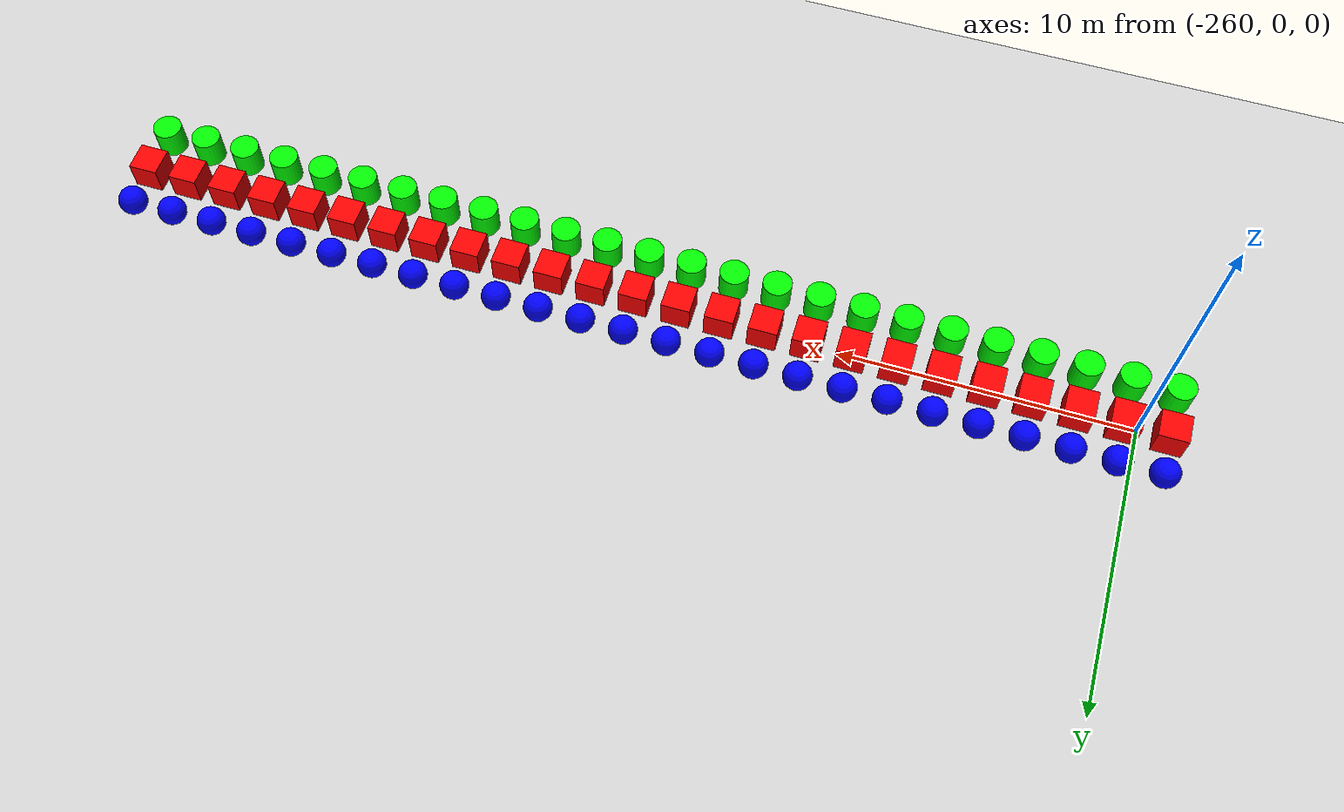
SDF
<sdf version="1.6">
 <world name="shapes">
  <model name="ground_plane">
   <static>true</static>
   <link name="link">
    <collision name="collision">
     <geometry><plane><normal>0 0 1</normal><size>100 100</size></plane></geometry>
    </collision>
    <visual name="visual">
     <geometry><plane><normal>0 0 1</normal><size>100 100</size></plane></geometry>
     <material>
      <ambient>0.8 0.8 0.8 1</ambient>
      <diffuse>0.8 0.8 0.8 1</diffuse>
      <specular>0.8 0.8 0.8 1</specular>
     </material>
    </visual>
   </link>
  </model>
  <model name="box_326">
   <static>false</static>
   <pose>-261.0 0 0.5 0 0 0</pose>
   <link name="box_link">
    <inertial>
     <inertia><ixx>1</ixx><ixy>0</ixy><ixz>0</ixz><iyy>1</iyy><iyz>0</iyz><izz>1</izz></inertia>
     <mass>1.0</mass>
    </inertial>
    <collision name="box_collision"><geometry><box><size>1 1 1</size></box></geometry></collision>
    <visual name="box_visual">
     <geometry><box><size>1 1 1</size></box></geometry>
     <material><ambient>1 0 0 1</ambient><diffuse>1 0 0 1</diffuse><specular>1 0 0 1</specular></material>
    </visual>
   </link>
  </model>
  <model name="cylinder_326">
   <static>false</static>
   <pose>-261.0 -1.5 0.5 0 0 0</pose>
   <link name="cylinder_link">
    <inertial>
     <inertia><ixx>2</ixx><ixy>0</ixy><ixz>0</ixz><iyy>2</iyy><iyz>0</iyz><izz>2</izz></inertia>
     <mass>2.0</mass>
    </inertial>
    <collision name="cylinder_collision">
     <geometry><cylinder><radius>0.5</radius><length>1.0</length></cylinder></geometry>
    </collision>
    <visual name="cylinder_visual">
     <geometry><cylinder><radius>0.5</radius><length>1.0</length></cylinder></geometry>
     <material><ambient>0 1 0 1</ambient><diffuse>0 1 0 1</diffuse><specular>0 1 0 1</specular></material>
    </visual>
   </link>
  </model>
  <model name="sphere_326">
   <static>false</static>
   <pose>-261.0 1.5 0.5 0 0 0</pose>
   <link name="sphere_link">
    <inertial>
     <inertia><ixx>3</ixx><ixy>0</ixy><ixz>0</ixz><iyy>3</iyy><iyz>0</iyz><izz>3</izz></inertia>
     <mass>3.0</mass>
    </inertial>
    <collision name="sphere_collision"><geometry><sphere><radius>0.5</radius></sphere></geometry></collision>
    <visual name="sphere_visual">
     <geometry><sphere><radius>0.5</radius></sphere></geometry>
     <material><ambient>0 0 1 1</ambient><diffuse>0 0 1 1</diffuse><specular>0 0 1 1</specular></material>
    </visual>
   </link>
  </model>
  <model name="box_327">
   <static>false</static>
   <pose>-259.5 0 0.5 0 0 0</pose>
   <link name="box_link">
    <inertial>
     <inertia><ixx>1</ixx><ixy>0</ixy><ixz>0</ixz><iyy>1</iyy><iyz>0</iyz><izz>1</izz></inertia>
     <mass>1.0</mass>
    </inertial>
    <collision name="box_collision"><geometry><box><size>1 1 1</size></box></geometry></collision>
    <visual name="box_visual">
     <geometry><box><size>1 1 1</size></box></geometry>
     <material><ambient>1 0 0 1</ambient><diffuse>1 0 0 1</diffuse><specular>1 0 0 1</specular></material>
    </visual>
   </link>
  </model>
  <model name="cylinder_327">
   <static>false</static>
   <pose>-259.5 -1.5 0.5 0 0 0</pose>
   <link name="cylinder_link">
    <inertial>
     <inertia><ixx>2</ixx><ixy>0</ixy><ixz>0</ixz><iyy>2</iyy><iyz>0</iyz><izz>2</izz></inertia>
     <mass>2.0</mass>
    </inertial>
    <collision name="cylinder_collision">
     <geometry><cylinder><radius>0.5</radius><length>1.0</length></cylinder></geometry>
    </collision>
    <visual name="cylinder_visual">
     <geometry><cylinder><radius>0.5</radius><length>1.0</length></cylinder></geometry>
     <material><ambient>0 1 0 1</ambient><diffuse>0 1 0 1</diffuse><specular>0 1 0 1</specular></material>
    </visual>
   </link>
  </model>
  <model name="sphere_327">
   <static>false</static>
   <pose>-259.5 1.5 0.5 0 0 0</pose>
   <link name="sphere_link">
    <inertial>
     <inertia><ixx>3</ixx><ixy>0</ixy><ixz>0</ixz><iyy>3</iyy><iyz>0</iyz><izz>3</izz></inertia>
     <mass>3.0</mass>
    </inertial>
    <collision name="sphere_collision"><geometry><sphere><radius>0.5</radius></sphere></geometry></collision>
    <visual name="sphere_visual">
     <geometry><sphere><radius>0.5</radius></sphere></geometry>
     <material><ambient>0 0 1 1</ambient><diffuse>0 0 1 1</diffuse><specular>0 0 1 1</specular></material>
    </visual>
   </link>
  </model>
  <model name="box_328">
   <static>false</static>
   <pose>-258.0 0 0.5 0 0 0</pose>
   <link name="box_link">
    <inertial>
     <inertia><ixx>1</ixx><ixy>0</ixy><ixz>0</ixz><iyy>1</iyy><iyz>0</iyz><izz>1</izz></inertia>
     <mass>1.0</mass>
    </inertial>
    <collision name="box_collision"><geometry><box><size>1 1 1</size></box></geometry></collision>
    <visual name="box_visual">
     <geometry><box><size>1 1 1</size></box></geometry>
     <material><ambient>1 0 0 1</ambient><diffuse>1 0 0 1</diffuse><specular>1 0 0 1</specular></material>
    </visual>
   </link>
  </model>
  <model name="cylinder_328">
   <static>false</static>
   <pose>-258.0 -1.5 0.5 0 0 0</pose>
   <link name="cylinder_link">
    <inertial>
     <inertia><ixx>2</ixx><ixy>0</ixy><ixz>0</ixz><iyy>2</iyy><iyz>0</iyz><izz>2</izz></inertia>
     <mass>2.0</mass>
    </inertial>
    <collision name="cylinder_collision">
     <geometry><cylinder><radius>0.5</radius><length>1.0</length></cylinder></geometry>
    </collision>
    <visual name="cylinder_visual">
     <geometry><cylinder><radius>0.5</radius><length>1.0</length></cylinder></geometry>
     <material><ambient>0 1 0 1</ambient><diffuse>0 1 0 1</diffuse><specular>0 1 0 1</specular></material>
    </visual>
   </link>
  </model>
  <model name="sphere_328">
   <static>false</static>
   <pose>-258.0 1.5 0.5 0 0 0</pose>
   <link name="sphere_link">
    <inertial>
     <inertia><ixx>3</ixx><ixy>0</ixy><ixz>0</ixz><iyy>3</iyy><iyz>0</iyz><izz>3</izz></inertia>
     <mass>3.0</mass>
    </inertial>
    <collision name="sphere_collision"><geometry><sphere><radius>0.5</radius></sphere></geometry></collision>
    <visual name="sphere_visual">
     <geometry><sphere><radius>0.5</radius></sphere></geometry>
     <material><ambient>0 0 1 1</ambient><diffuse>0 0 1 1</diffuse><specular>0 0 1 1</specular></material>
    </visual>
   </link>
  </model>
  <model name="box_329">
   <static>false</static>
   <pose>-256.5 0 0.5 0 0 0</pose>
   <link name="box_link">
    <inertial>
     <inertia><ixx>1</ixx><ixy>0</ixy><ixz>0</ixz><iyy>1</iyy><iyz>0</iyz><izz>1</izz></inertia>
     <mass>1.0</mass>
    </inertial>
    <collision name="box_collision"><geometry><box><size>1 1 1</size></box></geometry></collision>
    <visual name="box_visual">
     <geometry><box><size>1 1 1</size></box></geometry>
     <material><ambient>1 0 0 1</ambient><diffuse>1 0 0 1</diffuse><specular>1 0 0 1</specular></material>
    </visual>
   </link>
  </model>
  <model name="cylinder_329">
   <static>false</static>
   <pose>-256.5 -1.5 0.5 0 0 0</pose>
   <link name="cylinder_link">
    <inertial>
     <inertia><ixx>2</ixx><ixy>0</ixy><ixz>0</ixz><iyy>2</iyy><iyz>0</iyz><izz>2</izz></inertia>
     <mass>2.0</mass>
    </inertial>
    <collision name="cylinder_collision">
     <geometry><cylinder><radius>0.5</radius><length>1.0</length></cylinder></geometry>
    </collision>
    <visual name="cylinder_visual">
     <geometry><cylinder><radius>0.5</radius><length>1.0</length></cylinder></geometry>
     <material><ambient>0 1 0 1</ambient><diffuse>0 1 0 1</diffuse><specular>0 1 0 1</specular></material>
    </visual>
   </link>
  </model>
  <model name="sphere_329">
   <static>false</static>
   <pose>-256.5 1.5 0.5 0 0 0</pose>
   <link name="sphere_link">
    <inertial>
     <inertia><ixx>3</ixx><ixy>0</ixy><ixz>0</ixz><iyy>3</iyy><iyz>0</iyz><izz>3</izz></inertia>
     <mass>3.0</mass>
    </inertial>
    <collision name="sphere_collision"><geometry><sphere><radius>0.5</radius></sphere></geometry></collision>
    <visual name="sphere_visual">
     <geometry><sphere><radius>0.5</radius></sphere></geometry>
     <material><ambient>0 0 1 1</ambient><diffuse>0 0 1 1</diffuse><specular>0 0 1 1</specular></material>
    </visual>
   </link>
  </model>
  <model name="box_330">
   <static>false</static>
   <pose>-255.0 0 0.5 0 0 0</pose>
   <link name="box_link">
    <inertial>
     <inertia><ixx>1</ixx><ixy>0</ixy><ixz>0</ixz><iyy>1</iyy><iyz>0</iyz><izz>1</izz></inertia>
     <mass>1.0</mass>
    </inertial>
    <collision name="box_collision"><geometry><box><size>1 1 1</size></box></geometry></collision>
    <visual name="box_visual">
     <geometry><box><size>1 1 1</size></box></geometry>
     <material><ambient>1 0 0 1</ambient><diffuse>1 0 0 1</diffuse><specular>1 0 0 1</specular></material>
    </visual>
   </link>
  </model>
  <model name="cylinder_330">
   <static>false</static>
   <pose>-255.0 -1.5 0.5 0 0 0</pose>
   <link name="cylinder_link">
    <inertial>
     <inertia><ixx>2</ixx><ixy>0</ixy><ixz>0</ixz><iyy>2</iyy><iyz>0</iyz><izz>2</izz></inertia>
     <mass>2.0</mass>
    </inertial>
    <collision name="cylinder_collision">
     <geometry><cylinder><radius>0.5</radius><length>1.0</length></cylinder></geometry>
    </collision>
    <visual name="cylinder_visual">
     <geometry><cylinder><radius>0.5</radius><length>1.0</length></cylinder></geometry>
     <material><ambient>0 1 0 1</ambient><diffuse>0 1 0 1</diffuse><specular>0 1 0 1</specular></material>
    </visual>
   </link>
  </model>
  <model name="sphere_330">
   <static>false</static>
   <pose>-255.0 1.5 0.5 0 0 0</pose>
   <link name="sphere_link">
    <inertial>
     <inertia><ixx>3</ixx><ixy>0</ixy><ixz>0</ixz><iyy>3</iyy><iyz>0</iyz><izz>3</izz></inertia>
     <mass>3.0</mass>
    </inertial>
    <collision name="sphere_collision"><geometry><sphere><radius>0.5</radius></sphere></geometry></collision>
    <visual name="sphere_visual">
     <geometry><sphere><radius>0.5</radius></sphere></geometry>
     <material><ambient>0 0 1 1</ambient><diffuse>0 0 1 1</diffuse><specular>0 0 1 1</specular></material>
    </visual>
   </link>
  </model>
  <model name="box_331">
   <static>false</static>
   <pose>-253.5 0 0.5 0 0 0</pose>
   <link name="box_link">
    <inertial>
     <inertia><ixx>1</ixx><ixy>0</ixy><ixz>0</ixz><iyy>1</iyy><iyz>0</iyz><izz>1</izz></inertia>
     <mass>1.0</mass>
    </inertial>
    <collision name="box_collision"><geometry><box><size>1 1 1</size></box></geometry></collision>
    <visual name="box_visual">
     <geometry><box><size>1 1 1</size></box></geometry>
     <material><ambient>1 0 0 1</ambient><diffuse>1 0 0 1</diffuse><specular>1 0 0 1</specular></material>
    </visual>
   </link>
  </model>
  <model name="cylinder_331">
   <static>false</static>
   <pose>-253.5 -1.5 0.5 0 0 0</pose>
   <link name="cylinder_link">
    <inertial>
     <inertia><ixx>2</ixx><ixy>0</ixy><ixz>0</ixz><iyy>2</iyy><iyz>0</iyz><izz>2</izz></inertia>
     <mass>2.0</mass>
    </inertial>
    <collision name="cylinder_collision">
     <geometry><cylinder><radius>0.5</radius><length>1.0</length></cylinder></geometry>
    </collision>
    <visual name="cylinder_visual">
     <geometry><cylinder><radius>0.5</radius><length>1.0</length></cylinder></geometry>
     <material><ambient>0 1 0 1</ambient><diffuse>0 1 0 1</diffuse><specular>0 1 0 1</specular></material>
    </visual>
   </link>
  </model>
  <model name="sphere_331">
   <static>false</static>
   <pose>-253.5 1.5 0.5 0 0 0</pose>
   <link name="sphere_link">
    <inertial>
     <inertia><ixx>3</ixx><ixy>0</ixy><ixz>0</ixz><iyy>3</iyy><iyz>0</iyz><izz>3</izz></inertia>
     <mass>3.0</mass>
    </inertial>
    <collision name="sphere_collision"><geometry><sphere><radius>0.5</radius></sphere></geometry></collision>
    <visual name="sphere_visual">
     <geometry><sphere><radius>0.5</radius></sphere></geometry>
     <material><ambient>0 0 1 1</ambient><diffuse>0 0 1 1</diffuse><specular>0 0 1 1</specular></material>
    </visual>
   </link>
  </model>
  <model name="box_332">
   <static>false</static>
   <pose>-252.0 0 0.5 0 0 0</pose>
   <link name="box_link">
    <inertial>
     <inertia><ixx>1</ixx><ixy>0</ixy><ixz>0</ixz><iyy>1</iyy><iyz>0</iyz><izz>1</izz></inertia>
     <mass>1.0</mass>
    </inertial>
    <collision name="box_collision"><geometry><box><size>1 1 1</size></box></geometry></collision>
    <visual name="box_visual">
     <geometry><box><size>1 1 1</size></box></geometry>
     <material><ambient>1 0 0 1</ambient><diffuse>1 0 0 1</diffuse><specular>1 0 0 1</specular></material>
    </visual>
   </link>
  </model>
  <model name="cylinder_332">
   <static>false</static>
   <pose>-252.0 -1.5 0.5 0 0 0</pose>
   <link name="cylinder_link">
    <inertial>
     <inertia><ixx>2</ixx><ixy>0</ixy><ixz>0</ixz><iyy>2</iyy><iyz>0</iyz><izz>2</izz></inertia>
     <mass>2.0</mass>
    </inertial>
    <collision name="cylinder_collision">
     <geometry><cylinder><radius>0.5</radius><length>1.0</length></cylinder></geometry>
    </collision>
    <visual name="cylinder_visual">
     <geometry><cylinder><radius>0.5</radius><length>1.0</length></cylinder></geometry>
     <material><ambient>0 1 0 1</ambient><diffuse>0 1 0 1</diffuse><specular>0 1 0 1</specular></material>
    </visual>
   </link>
  </model>
  <model name="sphere_332">
   <static>false</static>
   <pose>-252.0 1.5 0.5 0 0 0</pose>
   <link name="sphere_link">
    <inertial>
     <inertia><ixx>3</ixx><ixy>0</ixy><ixz>0</ixz><iyy>3</iyy><iyz>0</iyz><izz>3</izz></inertia>
     <mass>3.0</mass>
    </inertial>
    <collision name="sphere_collision"><geometry><sphere><radius>0.5</radius></sphere></geometry></collision>
    <visual name="sphere_visual">
     <geometry><sphere><radius>0.5</radius></sphere></geometry>
     <material><ambient>0 0 1 1</ambient><diffuse>0 0 1 1</diffuse><specular>0 0 1 1</specular></material>
    </visual>
   </link>
  </model>
  <model name="box_333">
   <static>false</static>
   <pose>-250.5 0 0.5 0 0 0</pose>
   <link name="box_link">
    <inertial>
     <inertia><ixx>1</ixx><ixy>0</ixy><ixz>0</ixz><iyy>1</iyy><iyz>0</iyz><izz>1</izz></inertia>
     <mass>1.0</mass>
    </inertial>
    <collision name="box_collision"><geometry><box><size>1 1 1</size></box></geometry></collision>
    <visual name="box_visual">
     <geometry><box><size>1 1 1</size></box></geometry>
     <material><ambient>1 0 0 1</ambient><diffuse>1 0 0 1</diffuse><specular>1 0 0 1</specular></material>
    </visual>
   </link>
  </model>
  <model name="cylinder_333">
   <static>false</static>
   <pose>-250.5 -1.5 0.5 0 0 0</pose>
   <link name="cylinder_link">
    <inertial>
     <inertia><ixx>2</ixx><ixy>0</ixy><ixz>0</ixz><iyy>2</iyy><iyz>0</iyz><izz>2</izz></inertia>
     <mass>2.0</mass>
    </inertial>
    <collision name="cylinder_collision">
     <geometry><cylinder><radius>0.5</radius><length>1.0</length></cylinder></geometry>
    </collision>
    <visual name="cylinder_visual">
     <geometry><cylinder><radius>0.5</radius><length>1.0</length></cylinder></geometry>
     <material><ambient>0 1 0 1</ambient><diffuse>0 1 0 1</diffuse><specular>0 1 0 1</specular></material>
    </visual>
   </link>
  </model>
  <model name="sphere_333">
   <static>false</static>
   <pose>-250.5 1.5 0.5 0 0 0</pose>
   <link name="sphere_link">
    <inertial>
     <inertia><ixx>3</ixx><ixy>0</ixy><ixz>0</ixz><iyy>3</iyy><iyz>0</iyz><izz>3</izz></inertia>
     <mass>3.0</mass>
    </inertial>
    <collision name="sphere_collision"><geometry><sphere><radius>0.5</radius></sphere></geometry></collision>
    <visual name="sphere_visual">
     <geometry><sphere><radius>0.5</radius></sphere></geometry>
     <material><ambient>0 0 1 1</ambient><diffuse>0 0 1 1</diffuse><specular>0 0 1 1</specular></material>
    </visual>
   </link>
  </model>
  <model name="box_334">
   <static>false</static>
   <pose>-249.0 0 0.5 0 0 0</pose>
   <link name="box_link">
    <inertial>
     <inertia><ixx>1</ixx><ixy>0</ixy><ixz>0</ixz><iyy>1</iyy><iyz>0</iyz><izz>1</izz></inertia>
     <mass>1.0</mass>
    </inertial>
    <collision name="box_collision"><geometry><box><size>1 1 1</size></box></geometry></collision>
    <visual name="box_visual">
     <geometry><box><size>1 1 1</size></box></geometry>
     <material><ambient>1 0 0 1</ambient><diffuse>1 0 0 1</diffuse><specular>1 0 0 1</specular></material>
    </visual>
   </link>
  </model>
  <model name="cylinder_334">
   <static>false</static>
   <pose>-249.0 -1.5 0.5 0 0 0</pose>
   <link name="cylinder_link">
    <inertial>
     <inertia><ixx>2</ixx><ixy>0</ixy><ixz>0</ixz><iyy>2</iyy><iyz>0</iyz><izz>2</izz></inertia>
     <mass>2.0</mass>
    </inertial>
    <collision name="cylinder_collision">
     <geometry><cylinder><radius>0.5</radius><length>1.0</length></cylinder></geometry>
    </collision>
    <visual name="cylinder_visual">
     <geometry><cylinder><radius>0.5</radius><length>1.0</length></cylinder></geometry>
     <material><ambient>0 1 0 1</ambient><diffuse>0 1 0 1</diffuse><specular>0 1 0 1</specular></material>
    </visual>
   </link>
  </model>
  <model name="sphere_334">
   <static>false</static>
   <pose>-249.0 1.5 0.5 0 0 0</pose>
   <link name="sphere_link">
    <inertial>
     <inertia><ixx>3</ixx><ixy>0</ixy><ixz>0</ixz><iyy>3</iyy><iyz>0</iyz><izz>3</izz></inertia>
     <mass>3.0</mass>
    </inertial>
    <collision name="sphere_collision"><geometry><sphere><radius>0.5</radius></sphere></geometry></collision>
    <visual name="sphere_visual">
     <geometry><sphere><radius>0.5</radius></sphere></geometry>
     <material><ambient>0 0 1 1</ambient><diffuse>0 0 1 1</diffuse><specular>0 0 1 1</specular></material>
    </visual>
   </link>
  </model>
  <model name="box_335">
   <static>false</static>
   <pose>-247.5 0 0.5 0 0 0</pose>
   <link name="box_link">
    <inertial>
     <inertia><ixx>1</ixx><ixy>0</ixy><ixz>0</ixz><iyy>1</iyy><iyz>0</iyz><izz>1</izz></inertia>
     <mass>1.0</mass>
    </inertial>
    <collision name="box_collision"><geometry><box><size>1 1 1</size></box></geometry></collision>
    <visual name="box_visual">
     <geometry><box><size>1 1 1</size></box></geometry>
     <material><ambient>1 0 0 1</ambient><diffuse>1 0 0 1</diffuse><specular>1 0 0 1</specular></material>
    </visual>
   </link>
  </model>
  <model name="cylinder_335">
   <static>false</static>
   <pose>-247.5 -1.5 0.5 0 0 0</pose>
   <link name="cylinder_link">
    <inertial>
     <inertia><ixx>2</ixx><ixy>0</ixy><ixz>0</ixz><iyy>2</iyy><iyz>0</iyz><izz>2</izz></inertia>
     <mass>2.0</mass>
    </inertial>
    <collision name="cylinder_collision">
     <geometry><cylinder><radius>0.5</radius><length>1.0</length></cylinder></geometry>
    </collision>
    <visual name="cylinder_visual">
     <geometry><cylinder><radius>0.5</radius><length>1.0</length></cylinder></geometry>
     <material><ambient>0 1 0 1</ambient><diffuse>0 1 0 1</diffuse><specular>0 1 0 1</specular></material>
    </visual>
   </link>
  </model>
  <model name="sphere_335">
   <static>false</static>
   <pose>-247.5 1.5 0.5 0 0 0</pose>
   <link name="sphere_link">
    <inertial>
     <inertia><ixx>3</ixx><ixy>0</ixy><ixz>0</ixz><iyy>3</iyy><iyz>0</iyz><izz>3</izz></inertia>
     <mass>3.0</mass>
    </inertial>
    <collision name="sphere_collision"><geometry><sphere><radius>0.5</radius></sphere></geometry></collision>
    <visual name="sphere_visual">
     <geometry><sphere><radius>0.5</radius></sphere></geometry>
     <material><ambient>0 0 1 1</ambient><diffuse>0 0 1 1</diffuse><specular>0 0 1 1</specular></material>
    </visual>
   </link>
  </model>
  <model name="box_336">
   <static>false</static>
   <pose>-246.0 0 0.5 0 0 0</pose>
   <link name="box_link">
    <inertial>
     <inertia><ixx>1</ixx><ixy>0</ixy><ixz>0</ixz><iyy>1</iyy><iyz>0</iyz><izz>1</izz></inertia>
     <mass>1.0</mass>
    </inertial>
    <collision name="box_collision"><geometry><box><size>1 1 1</size></box></geometry></collision>
    <visual name="box_visual">
     <geometry><box><size>1 1 1</size></box></geometry>
     <material><ambient>1 0 0 1</ambient><diffuse>1 0 0 1</diffuse><specular>1 0 0 1</specular></material>
    </visual>
   </link>
  </model>
  <model name="cylinder_336">
   <static>false</static>
   <pose>-246.0 -1.5 0.5 0 0 0</pose>
   <link name="cylinder_link">
    <inertial>
     <inertia><ixx>2</ixx><ixy>0</ixy><ixz>0</ixz><iyy>2</iyy><iyz>0</iyz><izz>2</izz></inertia>
     <mass>2.0</mass>
    </inertial>
    <collision name="cylinder_collision">
     <geometry><cylinder><radius>0.5</radius><length>1.0</length></cylinder></geometry>
    </collision>
    <visual name="cylinder_visual">
     <geometry><cylinder><radius>0.5</radius><length>1.0</length></cylinder></geometry>
     <material><ambient>0 1 0 1</ambient><diffuse>0 1 0 1</diffuse><specular>0 1 0 1</specular></material>
    </visual>
   </link>
  </model>
  <model name="sphere_336">
   <static>false</static>
   <pose>-246.0 1.5 0.5 0 0 0</pose>
   <link name="sphere_link">
    <inertial>
     <inertia><ixx>3</ixx><ixy>0</ixy><ixz>0</ixz><iyy>3</iyy><iyz>0</iyz><izz>3</izz></inertia>
     <mass>3.0</mass>
    </inertial>
    <collision name="sphere_collision"><geometry><sphere><radius>0.5</radius></sphere></geometry></collision>
    <visual name="sphere_visual">
     <geometry><sphere><radius>0.5</radius></sphere></geometry>
     <material><ambient>0 0 1 1</ambient><diffuse>0 0 1 1</diffuse><specular>0 0 1 1</specular></material>
    </visual>
   </link>
  </model>
  <model name="box_337">
   <static>false</static>
   <pose>-244.5 0 0.5 0 0 0</pose>
   <link name="box_link">
    <inertial>
     <inertia><ixx>1</ixx><ixy>0</ixy><ixz>0</ixz><iyy>1</iyy><iyz>0</iyz><izz>1</izz></inertia>
     <mass>1.0</mass>
    </inertial>
    <collision name="box_collision"><geometry><box><size>1 1 1</size></box></geometry></collision>
    <visual name="box_visual">
     <geometry><box><size>1 1 1</size></box></geometry>
     <material><ambient>1 0 0 1</ambient><diffuse>1 0 0 1</diffuse><specular>1 0 0 1</specular></material>
    </visual>
   </link>
  </model>
  <model name="cylinder_337">
   <static>false</static>
   <pose>-244.5 -1.5 0.5 0 0 0</pose>
   <link name="cylinder_link">
    <inertial>
     <inertia><ixx>2</ixx><ixy>0</ixy><ixz>0</ixz><iyy>2</iyy><iyz>0</iyz><izz>2</izz></inertia>
     <mass>2.0</mass>
    </inertial>
    <collision name="cylinder_collision">
     <geometry><cylinder><radius>0.5</radius><length>1.0</length></cylinder></geometry>
    </collision>
    <visual name="cylinder_visual">
     <geometry><cylinder><radius>0.5</radius><length>1.0</length></cylinder></geometry>
     <material><ambient>0 1 0 1</ambient><diffuse>0 1 0 1</diffuse><specular>0 1 0 1</specular></material>
    </visual>
   </link>
  </model>
  <model name="sphere_337">
   <static>false</static>
   <pose>-244.5 1.5 0.5 0 0 0</pose>
   <link name="sphere_link">
    <inertial>
     <inertia><ixx>3</ixx><ixy>0</ixy><ixz>0</ixz><iyy>3</iyy><iyz>0</iyz><izz>3</izz></inertia>
     <mass>3.0</mass>
    </inertial>
    <collision name="sphere_collision"><geometry><sphere><radius>0.5</radius></sphere></geometry></collision>
    <visual name="sphere_visual">
     <geometry><sphere><radius>0.5</radius></sphere></geometry>
     <material><ambient>0 0 1 1</ambient><diffuse>0 0 1 1</diffuse><specular>0 0 1 1</specular></material>
    </visual>
   </link>
  </model>
  <model name="box_338">
   <static>false</static>
   <pose>-243.0 0 0.5 0 0 0</pose>
   <link name="box_link">
    <inertial>
     <inertia><ixx>1</ixx><ixy>0</ixy><ixz>0</ixz><iyy>1</iyy><iyz>0</iyz><izz>1</izz></inertia>
     <mass>1.0</mass>
    </inertial>
    <collision name="box_collision"><geometry><box><size>1 1 1</size></box></geometry></collision>
    <visual name="box_visual">
     <geometry><box><size>1 1 1</size></box></geometry>
     <material><ambient>1 0 0 1</ambient><diffuse>1 0 0 1</diffuse><specular>1 0 0 1</specular></material>
    </visual>
   </link>
  </model>
  <model name="cylinder_338">
   <static>false</static>
   <pose>-243.0 -1.5 0.5 0 0 0</pose>
   <link name="cylinder_link">
    <inertial>
     <inertia><ixx>2</ixx><ixy>0</ixy><ixz>0</ixz><iyy>2</iyy><iyz>0</iyz><izz>2</izz></inertia>
     <mass>2.0</mass>
    </inertial>
    <collision name="cylinder_collision">
     <geometry><cylinder><radius>0.5</radius><length>1.0</length></cylinder></geometry>
    </collision>
    <visual name="cylinder_visual">
     <geometry><cylinder><radius>0.5</radius><length>1.0</length></cylinder></geometry>
     <material><ambient>0 1 0 1</ambient><diffuse>0 1 0 1</diffuse><specular>0 1 0 1</specular></material>
    </visual>
   </link>
  </model>
  <model name="sphere_338">
   <static>false</static>
   <pose>-243.0 1.5 0.5 0 0 0</pose>
   <link name="sphere_link">
    <inertial>
     <inertia><ixx>3</ixx><ixy>0</ixy><ixz>0</ixz><iyy>3</iyy><iyz>0</iyz><izz>3</izz></inertia>
     <mass>3.0</mass>
    </inertial>
    <collision name="sphere_collision"><geometry><sphere><radius>0.5</radius></sphere></geometry></collision>
    <visual name="sphere_visual">
     <geometry><sphere><radius>0.5</radius></sphere></geometry>
     <material><ambient>0 0 1 1</ambient><diffuse>0 0 1 1</diffuse><specular>0 0 1 1</specular></material>
    </visual>
   </link>
  </model>
  <model name="box_339">
   <static>false</static>
   <pose>-241.5 0 0.5 0 0 0</pose>
   <link name="box_link">
    <inertial>
     <inertia><ixx>1</ixx><ixy>0</ixy><ixz>0</ixz><iyy>1</iyy><iyz>0</iyz><izz>1</izz></inertia>
     <mass>1.0</mass>
    </inertial>
    <collision name="box_collision"><geometry><box><size>1 1 1</size></box></geometry></collision>
    <visual name="box_visual">
     <geometry><box><size>1 1 1</size></box></geometry>
     <material><ambient>1 0 0 1</ambient><diffuse>1 0 0 1</diffuse><specular>1 0 0 1</specular></material>
    </visual>
   </link>
  </model>
  <model name="cylinder_339">
   <static>false</static>
   <pose>-241.5 -1.5 0.5 0 0 0</pose>
   <link name="cylinder_link">
    <inertial>
     <inertia><ixx>2</ixx><ixy>0</ixy><ixz>0</ixz><iyy>2</iyy><iyz>0</iyz><izz>2</izz></inertia>
     <mass>2.0</mass>
    </inertial>
    <collision name="cylinder_collision">
     <geometry><cylinder><radius>0.5</radius><length>1.0</length></cylinder></geometry>
    </collision>
    <visual name="cylinder_visual">
     <geometry><cylinder><radius>0.5</radius><length>1.0</length></cylinder></geometry>
     <material><ambient>0 1 0 1</ambient><diffuse>0 1 0 1</diffuse><specular>0 1 0 1</specular></material>
    </visual>
   </link>
  </model>
  <model name="sphere_339">
   <static>false</static>
   <pose>-241.5 1.5 0.5 0 0 0</pose>
   <link name="sphere_link">
    <inertial>
     <inertia><ixx>3</ixx><ixy>0</ixy><ixz>0</ixz><iyy>3</iyy><iyz>0</iyz><izz>3</izz></inertia>
     <mass>3.0</mass>
    </inertial>
    <collision name="sphere_collision"><geometry><sphere><radius>0.5</radius></sphere></geometry></collision>
    <visual name="sphere_visual">
     <geometry><sphere><radius>0.5</radius></sphere></geometry>
     <material><ambient>0 0 1 1</ambient><diffuse>0 0 1 1</diffuse><specular>0 0 1 1</specular></material>
    </visual>
   </link>
  </model>
  <model name="box_340">
   <static>false</static>
   <pose>-240.0 0 0.5 0 0 0</pose>
   <link name="box_link">
    <inertial>
     <inertia><ixx>1</ixx><ixy>0</ixy><ixz>0</ixz><iyy>1</iyy><iyz>0</iyz><izz>1</izz></inertia>
     <mass>1.0</mass>
    </inertial>
    <collision name="box_collision"><geometry><box><size>1 1 1</size></box></geometry></collision>
    <visual name="box_visual">
     <geometry><box><size>1 1 1</size></box></geometry>
     <material><ambient>1 0 0 1</ambient><diffuse>1 0 0 1</diffuse><specular>1 0 0 1</specular></material>
    </visual>
   </link>
  </model>
  <model name="cylinder_340">
   <static>false</static>
   <pose>-240.0 -1.5 0.5 0 0 0</pose>
   <link name="cylinder_link">
    <inertial>
     <inertia><ixx>2</ixx><ixy>0</ixy><ixz>0</ixz><iyy>2</iyy><iyz>0</iyz><izz>2</izz></inertia>
     <mass>2.0</mass>
    </inertial>
    <collision name="cylinder_collision">
     <geometry><cylinder><radius>0.5</radius><length>1.0</length></cylinder></geometry>
    </collision>
    <visual name="cylinder_visual">
     <geometry><cylinder><radius>0.5</radius><length>1.0</length></cylinder></geometry>
     <material><ambient>0 1 0 1</ambient><diffuse>0 1 0 1</diffuse><specular>0 1 0 1</specular></material>
    </visual>
   </link>
  </model>
  <model name="sphere_340">
   <static>false</static>
   <pose>-240.0 1.5 0.5 0 0 0</pose>
   <link name="sphere_link">
    <inertial>
     <inertia><ixx>3</ixx><ixy>0</ixy><ixz>0</ixz><iyy>3</iyy><iyz>0</iyz><izz>3</izz></inertia>
     <mass>3.0</mass>
    </inertial>
    <collision name="sphere_collision"><geometry><sphere><radius>0.5</radius></sphere></geometry></collision>
    <visual name="sphere_visual">
     <geometry><sphere><radius>0.5</radius></sphere></geometry>
     <material><ambient>0 0 1 1</ambient><diffuse>0 0 1 1</diffuse><specular>0 0 1 1</specular></material>
    </visual>
   </link>
  </model>
  <model name="box_341">
   <static>false</static>
   <pose>-238.5 0 0.5 0 0 0</pose>
   <link name="box_link">
    <inertial>
     <inertia><ixx>1</ixx><ixy>0</ixy><ixz>0</ixz><iyy>1</iyy><iyz>0</iyz><izz>1</izz></inertia>
     <mass>1.0</mass>
    </inertial>
    <collision name="box_collision"><geometry><box><size>1 1 1</size></box></geometry></collision>
    <visual name="box_visual">
     <geometry><box><size>1 1 1</size></box></geometry>
     <material><ambient>1 0 0 1</ambient><diffuse>1 0 0 1</diffuse><specular>1 0 0 1</specular></material>
    </visual>
   </link>
  </model>
  <model name="cylinder_341">
   <static>false</static>
   <pose>-238.5 -1.5 0.5 0 0 0</pose>
   <link name="cylinder_link">
    <inertial>
     <inertia><ixx>2</ixx><ixy>0</ixy><ixz>0</ixz><iyy>2</iyy><iyz>0</iyz><izz>2</izz></inertia>
     <mass>2.0</mass>
    </inertial>
    <collision name="cylinder_collision">
     <geometry><cylinder><radius>0.5</radius><length>1.0</length></cylinder></geometry>
    </collision>
    <visual name="cylinder_visual">
     <geometry><cylinder><radius>0.5</radius><length>1.0</length></cylinder></geometry>
     <material><ambient>0 1 0 1</ambient><diffuse>0 1 0 1</diffuse><specular>0 1 0 1</specular></material>
    </visual>
   </link>
  </model>
  <model name="sphere_341">
   <static>false</static>
   <pose>-238.5 1.5 0.5 0 0 0</pose>
   <link name="sphere_link">
    <inertial>
     <inertia><ixx>3</ixx><ixy>0</ixy><ixz>0</ixz><iyy>3</iyy><iyz>0</iyz><izz>3</izz></inertia>
     <mass>3.0</mass>
    </inertial>
    <collision name="sphere_collision"><geometry><sphere><radius>0.5</radius></sphere></geometry></collision>
    <visual name="sphere_visual">
     <geometry><sphere><radius>0.5</radius></sphere></geometry>
     <material><ambient>0 0 1 1</ambient><diffuse>0 0 1 1</diffuse><specular>0 0 1 1</specular></material>
    </visual>
   </link>
  </model>
  <model name="box_342">
   <static>false</static>
   <pose>-237.0 0 0.5 0 0 0</pose>
   <link name="box_link">
    <inertial>
     <inertia><ixx>1</ixx><ixy>0</ixy><ixz>0</ixz><iyy>1</iyy><iyz>0</iyz><izz>1</izz></inertia>
     <mass>1.0</mass>
    </inertial>
    <collision name="box_collision"><geometry><box><size>1 1 1</size></box></geometry></collision>
    <visual name="box_visual">
     <geometry><box><size>1 1 1</size></box></geometry>
     <material><ambient>1 0 0 1</ambient><diffuse>1 0 0 1</diffuse><specular>1 0 0 1</specular></material>
    </visual>
   </link>
  </model>
  <model name="cylinder_342">
   <static>false</static>
   <pose>-237.0 -1.5 0.5 0 0 0</pose>
   <link name="cylinder_link">
    <inertial>
     <inertia><ixx>2</ixx><ixy>0</ixy><ixz>0</ixz><iyy>2</iyy><iyz>0</iyz><izz>2</izz></inertia>
     <mass>2.0</mass>
    </inertial>
    <collision name="cylinder_collision">
     <geometry><cylinder><radius>0.5</radius><length>1.0</length></cylinder></geometry>
    </collision>
    <visual name="cylinder_visual">
     <geometry><cylinder><radius>0.5</radius><length>1.0</length></cylinder></geometry>
     <material><ambient>0 1 0 1</ambient><diffuse>0 1 0 1</diffuse><specular>0 1 0 1</specular></material>
    </visual>
   </link>
  </model>
  <model name="sphere_342">
   <static>false</static>
   <pose>-237.0 1.5 0.5 0 0 0</pose>
   <link name="sphere_link">
    <inertial>
     <inertia><ixx>3</ixx><ixy>0</ixy><ixz>0</ixz><iyy>3</iyy><iyz>0</iyz><izz>3</izz></inertia>
     <mass>3.0</mass>
    </inertial>
    <collision name="sphere_collision"><geometry><sphere><radius>0.5</radius></sphere></geometry></collision>
    <visual name="sphere_visual">
     <geometry><sphere><radius>0.5</radius></sphere></geometry>
     <material><ambient>0 0 1 1</ambient><diffuse>0 0 1 1</diffuse><specular>0 0 1 1</specular></material>
    </visual>
   </link>
  </model>
  <model name="box_343">
   <static>false</static>
   <pose>-235.5 0 0.5 0 0 0</pose>
   <link name="box_link">
    <inertial>
     <inertia><ixx>1</ixx><ixy>0</ixy><ixz>0</ixz><iyy>1</iyy><iyz>0</iyz><izz>1</izz></inertia>
     <mass>1.0</mass>
    </inertial>
    <collision name="box_collision"><geometry><box><size>1 1 1</size></box></geometry></collision>
    <visual name="box_visual">
     <geometry><box><size>1 1 1</size></box></geometry>
     <material><ambient>1 0 0 1</ambient><diffuse>1 0 0 1</diffuse><specular>1 0 0 1</specular></material>
    </visual>
   </link>
  </model>
  <model name="cylinder_343">
   <static>false</static>
   <pose>-235.5 -1.5 0.5 0 0 0</pose>
   <link name="cylinder_link">
    <inertial>
     <inertia><ixx>2</ixx><ixy>0</ixy><ixz>0</ixz><iyy>2</iyy><iyz>0</iyz><izz>2</izz></inertia>
     <mass>2.0</mass>
    </inertial>
    <collision name="cylinder_collision">
     <geometry><cylinder><radius>0.5</radius><length>1.0</length></cylinder></geometry>
    </collision>
    <visual name="cylinder_visual">
     <geometry><cylinder><radius>0.5</radius><length>1.0</length></cylinder></geometry>
     <material><ambient>0 1 0 1</ambient><diffuse>0 1 0 1</diffuse><specular>0 1 0 1</specular></material>
    </visual>
   </link>
  </model>
  <model name="sphere_343">
   <static>false</static>
   <pose>-235.5 1.5 0.5 0 0 0</pose>
   <link name="sphere_link">
    <inertial>
     <inertia><ixx>3</ixx><ixy>0</ixy><ixz>0</ixz><iyy>3</iyy><iyz>0</iyz><izz>3</izz></inertia>
     <mass>3.0</mass>
    </inertial>
    <collision name="sphere_collision"><geometry><sphere><radius>0.5</radius></sphere></geometry></collision>
    <visual name="sphere_visual">
     <geometry><sphere><radius>0.5</radius></sphere></geometry>
     <material><ambient>0 0 1 1</ambient><diffuse>0 0 1 1</diffuse><specular>0 0 1 1</specular></material>
    </visual>
   </link>
  </model>
  <model name="box_344">
   <static>false</static>
   <pose>-234.0 0 0.5 0 0 0</pose>
   <link name="box_link">
    <inertial>
     <inertia><ixx>1</ixx><ixy>0</ixy><ixz>0</ixz><iyy>1</iyy><iyz>0</iyz><izz>1</izz></inertia>
     <mass>1.0</mass>
    </inertial>
    <collision name="box_collision"><geometry><box><size>1 1 1</size></box></geometry></collision>
    <visual name="box_visual">
     <geometry><box><size>1 1 1</size></box></geometry>
     <material><ambient>1 0 0 1</ambient><diffuse>1 0 0 1</diffuse><specular>1 0 0 1</specular></material>
    </visual>
   </link>
  </model>
  <model name="cylinder_344">
   <static>false</static>
   <pose>-234.0 -1.5 0.5 0 0 0</pose>
   <link name="cylinder_link">
    <inertial>
     <inertia><ixx>2</ixx><ixy>0</ixy><ixz>0</ixz><iyy>2</iyy><iyz>0</iyz><izz>2</izz></inertia>
     <mass>2.0</mass>
    </inertial>
    <collision name="cylinder_collision">
     <geometry><cylinder><radius>0.5</radius><length>1.0</length></cylinder></geometry>
    </collision>
    <visual name="cylinder_visual">
     <geometry><cylinder><radius>0.5</radius><length>1.0</length></cylinder></geometry>
     <material><ambient>0 1 0 1</ambient><diffuse>0 1 0 1</diffuse><specular>0 1 0 1</specular></material>
    </visual>
   </link>
  </model>
  <model name="sphere_344">
   <static>false</static>
   <pose>-234.0 1.5 0.5 0 0 0</pose>
   <link name="sphere_link">
    <inertial>
     <inertia><ixx>3</ixx><ixy>0</ixy><ixz>0</ixz><iyy>3</iyy><iyz>0</iyz><izz>3</izz></inertia>
     <mass>3.0</mass>
    </inertial>
    <collision name="sphere_collision"><geometry><sphere><radius>0.5</radius></sphere></geometry></collision>
    <visual name="sphere_visual">
     <geometry><sphere><radius>0.5</radius></sphere></geometry>
     <material><ambient>0 0 1 1</ambient><diffuse>0 0 1 1</diffuse><specular>0 0 1 1</specular></material>
    </visual>
   </link>
  </model>
  <model name="box_345">
   <static>false</static>
   <pose>-232.5 0 0.5 0 0 0</pose>
   <link name="box_link">
    <inertial>
     <inertia><ixx>1</ixx><ixy>0</ixy><ixz>0</ixz><iyy>1</iyy><iyz>0</iyz><izz>1</izz></inertia>
     <mass>1.0</mass>
    </inertial>
    <collision name="box_collision"><geometry><box><size>1 1 1</size></box></geometry></collision>
    <visual name="box_visual">
     <geometry><box><size>1 1 1</size></box></geometry>
     <material><ambient>1 0 0 1</ambient><diffuse>1 0 0 1</diffuse><specular>1 0 0 1</specular></material>
    </visual>
   </link>
  </model>
  <model name="cylinder_345">
   <static>false</static>
   <pose>-232.5 -1.5 0.5 0 0 0</pose>
   <link name="cylinder_link">
    <inertial>
     <inertia><ixx>2</ixx><ixy>0</ixy><ixz>0</ixz><iyy>2</iyy><iyz>0</iyz><izz>2</izz></inertia>
     <mass>2.0</mass>
    </inertial>
    <collision name="cylinder_collision">
     <geometry><cylinder><radius>0.5</radius><length>1.0</length></cylinder></geometry>
    </collision>
    <visual name="cylinder_visual">
     <geometry><cylinder><radius>0.5</radius><length>1.0</length></cylinder></geometry>
     <material><ambient>0 1 0 1</ambient><diffuse>0 1 0 1</diffuse><specular>0 1 0 1</specular></material>
    </visual>
   </link>
  </model>
  <model name="sphere_345">
   <static>false</static>
   <pose>-232.5 1.5 0.5 0 0 0</pose>
   <link name="sphere_link">
    <inertial>
     <inertia><ixx>3</ixx><ixy>0</ixy><ixz>0</ixz><iyy>3</iyy><iyz>0</iyz><izz>3</izz></inertia>
     <mass>3.0</mass>
    </inertial>
    <collision name="sphere_collision"><geometry><sphere><radius>0.5</radius></sphere></geometry></collision>
    <visual name="sphere_visual">
     <geometry><sphere><radius>0.5</radius></sphere></geometry>
     <material><ambient>0 0 1 1</ambient><diffuse>0 0 1 1</diffuse><specular>0 0 1 1</specular></material>
    </visual>
   </link>
  </model>
  <model name="box_346">
   <static>false</static>
   <pose>-231.0 0 0.5 0 0 0</pose>
   <link name="box_link">
    <inertial>
     <inertia><ixx>1</ixx><ixy>0</ixy><ixz>0</ixz><iyy>1</iyy><iyz>0</iyz><izz>1</izz></inertia>
     <mass>1.0</mass>
    </inertial>
    <collision name="box_collision"><geometry><box><size>1 1 1</size></box></geometry></collision>
    <visual name="box_visual">
     <geometry><box><size>1 1 1</size></box></geometry>
     <material><ambient>1 0 0 1</ambient><diffuse>1 0 0 1</diffuse><specular>1 0 0 1</specular></material>
    </visual>
   </link>
  </model>
  <model name="cylinder_346">
   <static>false</static>
   <pose>-231.0 -1.5 0.5 0 0 0</pose>
   <link name="cylinder_link">
    <inertial>
     <inertia><ixx>2</ixx><ixy>0</ixy><ixz>0</ixz><iyy>2</iyy><iyz>0</iyz><izz>2</izz></inertia>
     <mass>2.0</mass>
    </inertial>
    <collision name="cylinder_collision">
     <geometry><cylinder><radius>0.5</radius><length>1.0</length></cylinder></geometry>
    </collision>
    <visual name="cylinder_visual">
     <geometry><cylinder><radius>0.5</radius><length>1.0</length></cylinder></geometry>
     <material><ambient>0 1 0 1</ambient><diffuse>0 1 0 1</diffuse><specular>0 1 0 1</specular></material>
    </visual>
   </link>
  </model>
  <model name="sphere_346">
   <static>false</static>
   <pose>-231.0 1.5 0.5 0 0 0</pose>
   <link name="sphere_link">
    <inertial>
     <inertia><ixx>3</ixx><ixy>0</ixy><ixz>0</ixz><iyy>3</iyy><iyz>0</iyz><izz>3</izz></inertia>
     <mass>3.0</mass>
    </inertial>
    <collision name="sphere_collision"><geometry><sphere><radius>0.5</radius></sphere></geometry></collision>
    <visual name="sphere_visual">
     <geometry><sphere><radius>0.5</radius></sphere></geometry>
     <material><ambient>0 0 1 1</ambient><diffuse>0 0 1 1</diffuse><specular>0 0 1 1</specular></material>
    </visual>
   </link>
  </model>
  <model name="box_347">
   <static>false</static>
   <pose>-229.5 0 0.5 0 0 0</pose>
   <link name="box_link">
    <inertial>
     <inertia><ixx>1</ixx><ixy>0</ixy><ixz>0</ixz><iyy>1</iyy><iyz>0</iyz><izz>1</izz></inertia>
     <mass>1.0</mass>
    </inertial>
    <collision name="box_collision"><geometry><box><size>1 1 1</size></box></geometry></collision>
    <visual name="box_visual">
     <geometry><box><size>1 1 1</size></box></geometry>
     <material><ambient>1 0 0 1</ambient><diffuse>1 0 0 1</diffuse><specular>1 0 0 1</specular></material>
    </visual>
   </link>
  </model>
  <model name="cylinder_347">
   <static>false</static>
   <pose>-229.5 -1.5 0.5 0 0 0</pose>
   <link name="cylinder_link">
    <inertial>
     <inertia><ixx>2</ixx><ixy>0</ixy><ixz>0</ixz><iyy>2</iyy><iyz>0</iyz><izz>2</izz></inertia>
     <mass>2.0</mass>
    </inertial>
    <collision name="cylinder_collision">
     <geometry><cylinder><radius>0.5</radius><length>1.0</length></cylinder></geometry>
    </collision>
    <visual name="cylinder_visual">
     <geometry><cylinder><radius>0.5</radius><length>1.0</length></cylinder></geometry>
     <material><ambient>0 1 0 1</ambient><diffuse>0 1 0 1</diffuse><specular>0 1 0 1</specular></material>
    </visual>
   </link>
  </model>
  <model name="sphere_347">
   <static>false</static>
   <pose>-229.5 1.5 0.5 0 0 0</pose>
   <link name="sphere_link">
    <inertial>
     <inertia><ixx>3</ixx><ixy>0</ixy><ixz>0</ixz><iyy>3</iyy><iyz>0</iyz><izz>3</izz></inertia>
     <mass>3.0</mass>
    </inertial>
    <collision name="sphere_collision"><geometry><sphere><radius>0.5</radius></sphere></geometry></collision>
    <visual name="sphere_visual">
     <geometry><sphere><radius>0.5</radius></sphere></geometry>
     <material><ambient>0 0 1 1</ambient><diffuse>0 0 1 1</diffuse><specular>0 0 1 1</specular></material>
    </visual>
   </link>
  </model>
  <model name="box_348">
   <static>false</static>
   <pose>-228.0 0 0.5 0 0 0</pose>
   <link name="box_link">
    <inertial>
     <inertia><ixx>1</ixx><ixy>0</ixy><ixz>0</ixz><iyy>1</iyy><iyz>0</iyz><izz>1</izz></inertia>
     <mass>1.0</mass>
    </inertial>
    <collision name="box_collision"><geometry><box><size>1 1 1</size></box></geometry></collision>
    <visual name="box_visual">
     <geometry><box><size>1 1 1</size></box></geometry>
     <material><ambient>1 0 0 1</ambient><diffuse>1 0 0 1</diffuse><specular>1 0 0 1</specular></material>
    </visual>
   </link>
  </model>
  <model name="cylinder_348">
   <static>false</static>
   <pose>-228.0 -1.5 0.5 0 0 0</pose>
   <link name="cylinder_link">
    <inertial>
     <inertia><ixx>2</ixx><ixy>0</ixy><ixz>0</ixz><iyy>2</iyy><iyz>0</iyz><izz>2</izz></inertia>
     <mass>2.0</mass>
    </inertial>
    <collision name="cylinder_collision">
     <geometry><cylinder><radius>0.5</radius><length>1.0</length></cylinder></geometry>
    </collision>
    <visual name="cylinder_visual">
     <geometry><cylinder><radius>0.5</radius><length>1.0</length></cylinder></geometry>
     <material><ambient>0 1 0 1</ambient><diffuse>0 1 0 1</diffuse><specular>0 1 0 1</specular></material>
    </visual>
   </link>
  </model>
  <model name="sphere_348">
   <static>false</static>
   <pose>-228.0 1.5 0.5 0 0 0</pose>
   <link name="sphere_link">
    <inertial>
     <inertia><ixx>3</ixx><ixy>0</ixy><ixz>0</ixz><iyy>3</iyy><iyz>0</iyz><izz>3</izz></inertia>
     <mass>3.0</mass>
    </inertial>
    <collision name="sphere_collision"><geometry><sphere><radius>0.5</radius></sphere></geometry></collision>
    <visual name="sphere_visual">
     <geometry><sphere><radius>0.5</radius></sphere></geometry>
     <material><ambient>0 0 1 1</ambient><diffuse>0 0 1 1</diffuse><specular>0 0 1 1</specular></material>
    </visual>
   </link>
  </model>
  <model name="box_349">
   <static>false</static>
   <pose>-226.5 0 0.5 0 0 0</pose>
   <link name="box_link">
    <inertial>
     <inertia><ixx>1</ixx><ixy>0</ixy><ixz>0</ixz><iyy>1</iyy><iyz>0</iyz><izz>1</izz></inertia>
     <mass>1.0</mass>
    </inertial>
    <collision name="box_collision"><geometry><box><size>1 1 1</size></box></geometry></collision>
    <visual name="box_visual">
     <geometry><box><size>1 1 1</size></box></geometry>
     <material><ambient>1 0 0 1</ambient><diffuse>1 0 0 1</diffuse><specular>1 0 0 1</specular></material>
    </visual>
   </link>
  </model>
  <model name="cylinder_349">
   <static>false</static>
   <pose>-226.5 -1.5 0.5 0 0 0</pose>
   <link name="cylinder_link">
    <inertial>
     <inertia><ixx>2</ixx><ixy>0</ixy><ixz>0</ixz><iyy>2</iyy><iyz>0</iyz><izz>2</izz></inertia>
     <mass>2.0</mass>
    </inertial>
    <collision name="cylinder_collision">
     <geometry><cylinder><radius>0.5</radius><length>1.0</length></cylinder></geometry>
    </collision>
    <visual name="cylinder_visual">
     <geometry><cylinder><radius>0.5</radius><length>1.0</length></cylinder></geometry>
     <material><ambient>0 1 0 1</ambient><diffuse>0 1 0 1</diffuse><specular>0 1 0 1</specular></material>
    </visual>
   </link>
  </model>
  <model name="sphere_349">
   <static>false</static>
   <pose>-226.5 1.5 0.5 0 0 0</pose>
   <link name="sphere_link">
    <inertial>
     <inertia><ixx>3</ixx><ixy>0</ixy><ixz>0</ixz><iyy>3</iyy><iyz>0</iyz><izz>3</izz></inertia>
     <mass>3.0</mass>
    </inertial>
    <collision name="sphere_collision"><geometry><sphere><radius>0.5</radius></sphere></geometry></collision>
    <visual name="sphere_visual">
     <geometry><sphere><radius>0.5</radius></sphere></geometry>
     <material><ambient>0 0 1 1</ambient><diffuse>0 0 1 1</diffuse><specular>0 0 1 1</specular></material>
    </visual>
   </link>
  </model>
  <model name="box_350">
   <static>false</static>
   <pose>-225.0 0 0.5 0 0 0</pose>
   <link name="box_link">
    <inertial>
     <inertia><ixx>1</ixx><ixy>0</ixy><ixz>0</ixz><iyy>1</iyy><iyz>0</iyz><izz>1</izz></inertia>
     <mass>1.0</mass>
    </inertial>
    <collision name="box_collision"><geometry><box><size>1 1 1</size></box></geometry></collision>
    <visual name="box_visual">
     <geometry><box><size>1 1 1</size></box></geometry>
     <material><ambient>1 0 0 1</ambient><diffuse>1 0 0 1</diffuse><specular>1 0 0 1</specular></material>
    </visual>
   </link>
  </model>
  <model name="cylinder_350">
   <static>false</static>
   <pose>-225.0 -1.5 0.5 0 0 0</pose>
   <link name="cylinder_link">
    <inertial>
     <inertia><ixx>2</ixx><ixy>0</ixy><ixz>0</ixz><iyy>2</iyy><iyz>0</iyz><izz>2</izz></inertia>
     <mass>2.0</mass>
    </inertial>
    <collision name="cylinder_collision">
     <geometry><cylinder><radius>0.5</radius><length>1.0</length></cylinder></geometry>
    </collision>
    <visual name="cylinder_visual">
     <geometry><cylinder><radius>0.5</radius><length>1.0</length></cylinder></geometry>
     <material><ambient>0 1 0 1</ambient><diffuse>0 1 0 1</diffuse><specular>0 1 0 1</specular></material>
    </visual>
   </link>
  </model>
  <model name="sphere_350">
   <static>false</static>
   <pose>-225.0 1.5 0.5 0 0 0</pose>
   <link name="sphere_link">
    <inertial>
     <inertia><ixx>3</ixx><ixy>0</ixy><ixz>0</ixz><iyy>3</iyy><iyz>0</iyz><izz>3</izz></inertia>
     <mass>3.0</mass>
    </inertial>
    <collision name="sphere_collision"><geometry><sphere><radius>0.5</radius></sphere></geometry></collision>
    <visual name="sphere_visual">
     <geometry><sphere><radius>0.5</radius></sphere></geometry>
     <material><ambient>0 0 1 1</ambient><diffuse>0 0 1 1</diffuse><specular>0 0 1 1</specular></material>
    </visual>
   </link>
  </model>
 </world>
</sdf>
